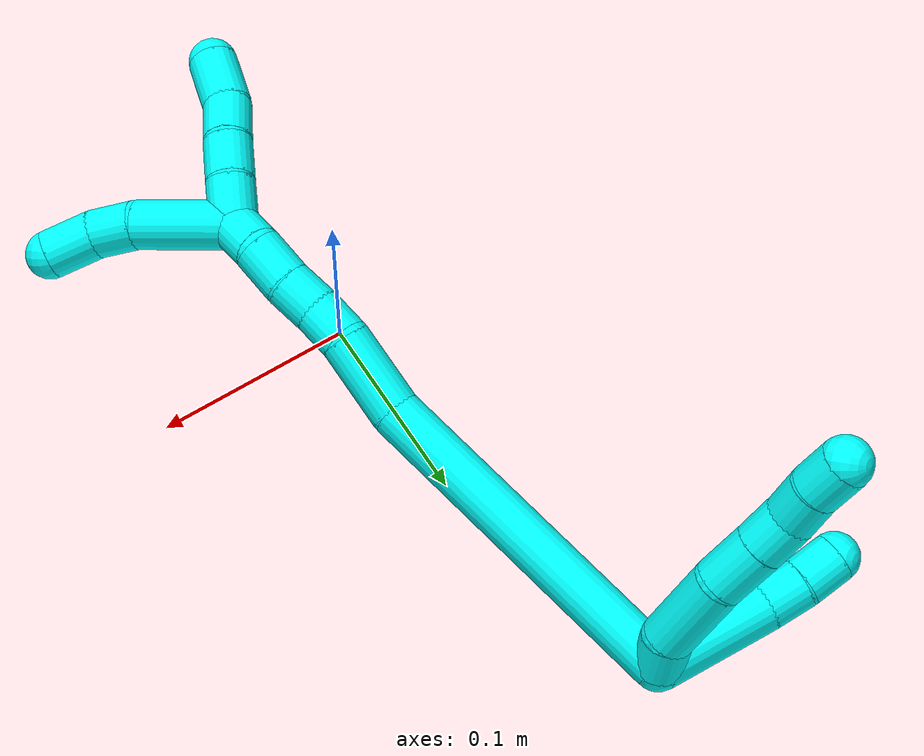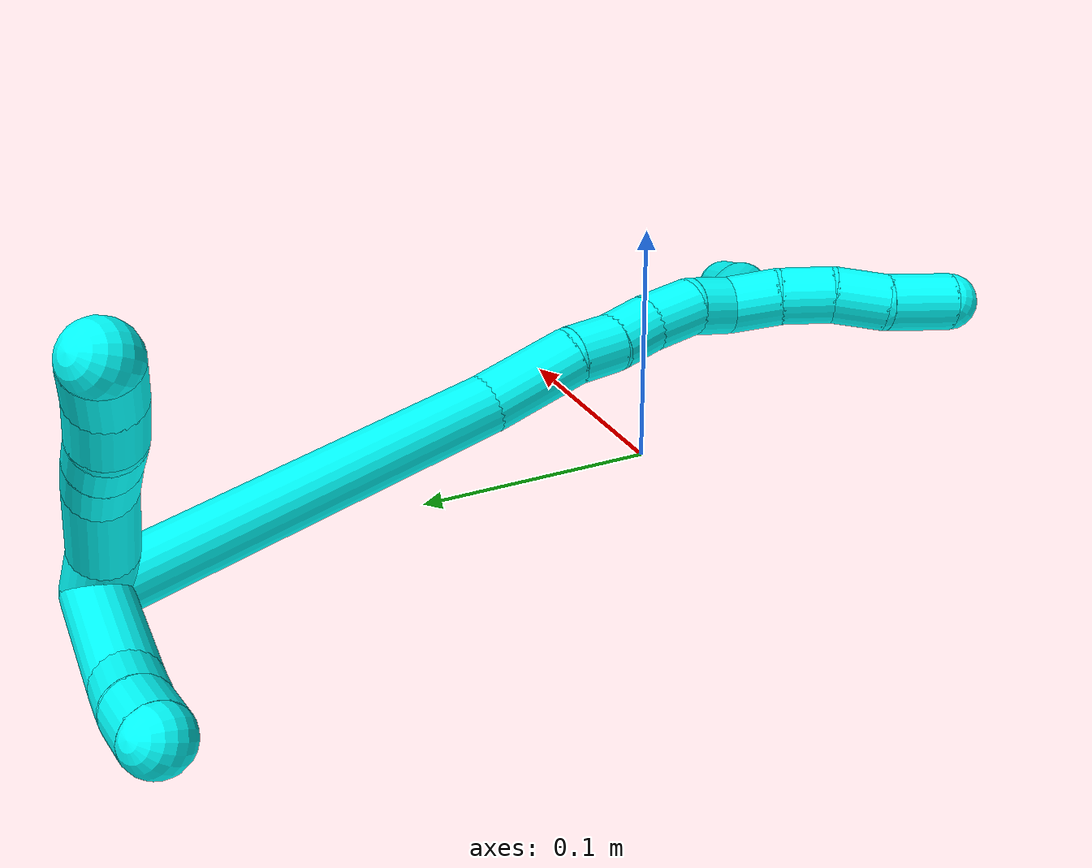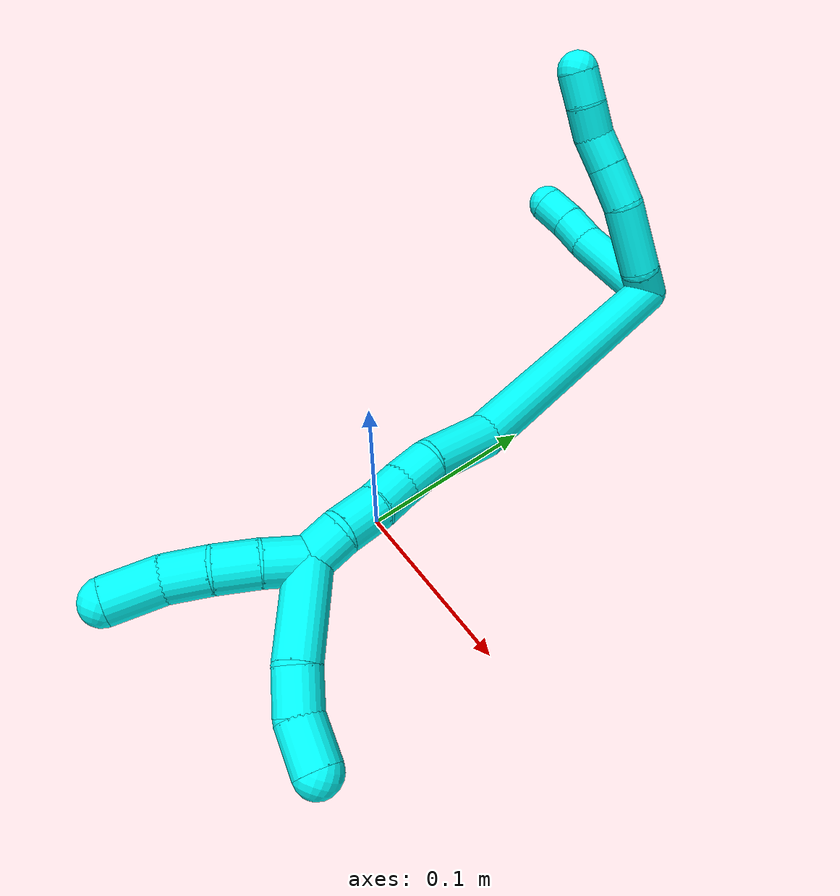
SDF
<sdf version="1.7">
 <world name="default">
  <model name="3">
   <static>0</static>
   <link name="3">
    <collision name="collision-cylinder-e_1_2_8">
     <pose>0.008439 -0.00298 0.004604 0.574475 0.994513 0.317955</pose>
     <geometry><cylinder><radius>0.0125</radius><length>0.02013</length></cylinder></geometry>
     <surface>
      <friction><ode><mu>1.16</mu><mu2>1.16</mu2><slip1>0</slip1><slip2>0</slip2></ode></friction>
      <contact><ode><kp>1e+06</kp><kd>1</kd><max_vel>0</max_vel><min_depth>0.001</min_depth></ode></contact>
     </surface>
    </collision>
    <visual name="visual-cylinder-e_1_2_8">
     <pose>0.008439 -0.00298 0.004604 0.574475 0.994513 0.317955</pose>
     <geometry><cylinder><radius>0.0125</radius><length>0.02013</length></cylinder></geometry>
     <material><ambient>0.003922 1 0.996078 1</ambient></material>
    </visual>
    <collision name="collision-cylinder-e_2_8_9">
     <pose>0.030154 -0.014828 0.023819 0.545464 0.660369 0.191141</pose>
     <geometry><cylinder><radius>0.0125</radius><length>0.043281</length></cylinder></geometry>
     <surface>
      <friction><ode><mu>1.16</mu><mu2>1.16</mu2><slip1>0</slip1><slip2>0</slip2></ode></friction>
      <contact><ode><kp>1e+06</kp><kd>1</kd><max_vel>0</max_vel><min_depth>0.001</min_depth></ode></contact>
     </surface>
    </collision>
    <visual name="visual-cylinder-e_2_8_9">
     <pose>0.030154 -0.014828 0.023819 0.545464 0.660369 0.191141</pose>
     <geometry><cylinder><radius>0.0125</radius><length>0.043281</length></cylinder></geometry>
     <material><ambient>0.003922 1 0.996078 1</ambient></material>
    </visual>
    <collision name="collision-cylinder-e_3_9_10">
     <pose>0.049297 -0.031307 0.047501 0.698181 0.460096 0.170081</pose>
     <geometry><cylinder><radius>0.0125</radius><length>0.026433</length></cylinder></geometry>
     <surface>
      <friction><ode><mu>1.16</mu><mu2>1.16</mu2><slip1>0</slip1><slip2>0</slip2></ode></friction>
      <contact><ode><kp>1e+06</kp><kd>1</kd><max_vel>0</max_vel><min_depth>0.001</min_depth></ode></contact>
     </surface>
    </collision>
    <visual name="visual-cylinder-e_3_9_10">
     <pose>0.049297 -0.031307 0.047501 0.698181 0.460096 0.170081</pose>
     <geometry><cylinder><radius>0.0125</radius><length>0.026433</length></cylinder></geometry>
     <material><ambient>0.003922 1 0.996078 1</ambient></material>
    </visual>
    <collision name="collision-cylinder-e_4_10_11">
     <pose>0.059744 -0.044882 0.063273 0.727156 0.471961 0.182479</pose>
     <geometry><cylinder><radius>0.0125</radius><length>0.02014</length></cylinder></geometry>
     <surface>
      <friction><ode><mu>1.16</mu><mu2>1.16</mu2><slip1>0</slip1><slip2>0</slip2></ode></friction>
      <contact><ode><kp>1e+06</kp><kd>1</kd><max_vel>0</max_vel><min_depth>0.001</min_depth></ode></contact>
     </surface>
    </collision>
    <visual name="visual-cylinder-e_4_10_11">
     <pose>0.059744 -0.044882 0.063273 0.727156 0.471961 0.182479</pose>
     <geometry><cylinder><radius>0.0125</radius><length>0.02014</length></cylinder></geometry>
     <material><ambient>0.003922 1 0.996078 1</ambient></material>
    </visual>
    <collision name="collision-cylinder-e_5_11_12">
     <pose>0.070761 -0.054659 0.076614 0.521506 0.69919 0.193944</pose>
     <geometry><cylinder><radius>0.0125</radius><length>0.020011</length></cylinder></geometry>
     <surface>
      <friction><ode><mu>1.16</mu><mu2>1.16</mu2><slip1>0</slip1><slip2>0</slip2></ode></friction>
      <contact><ode><kp>1e+06</kp><kd>1</kd><max_vel>0</max_vel><min_depth>0.001</min_depth></ode></contact>
     </surface>
    </collision>
    <visual name="visual-cylinder-e_5_11_12">
     <pose>0.070761 -0.054659 0.076614 0.521506 0.69919 0.193944</pose>
     <geometry><cylinder><radius>0.0125</radius><length>0.020011</length></cylinder></geometry>
     <material><ambient>0.003922 1 0.996078 1</ambient></material>
    </visual>
    <collision name="collision-cylinder-e_6_12_6">
     <pose>0.082512 -0.062786 0.090551 0.533668 0.559728 0.156805</pose>
     <geometry><cylinder><radius>0.0125</radius><length>0.020004</length></cylinder></geometry>
     <surface>
      <friction><ode><mu>1.16</mu><mu2>1.16</mu2><slip1>0</slip1><slip2>0</slip2></ode></friction>
      <contact><ode><kp>1e+06</kp><kd>1</kd><max_vel>0</max_vel><min_depth>0.001</min_depth></ode></contact>
     </surface>
    </collision>
    <visual name="visual-cylinder-e_6_12_6">
     <pose>0.082512 -0.062786 0.090551 0.533668 0.559728 0.156805</pose>
     <geometry><cylinder><radius>0.0125</radius><length>0.020004</length></cylinder></geometry>
     <material><ambient>0.003922 1 0.996078 1</ambient></material>
    </visual>
    <collision name="collision-cylinder-e_1_2_13">
     <pose>-0.006802 -0.02538 0.013487 1.08233 -0.232392 -0.140074</pose>
     <geometry><cylinder><radius>0.0125</radius><length>0.05907</length></cylinder></geometry>
     <surface>
      <friction><ode><mu>1.16</mu><mu2>1.16</mu2><slip1>0</slip1><slip2>0</slip2></ode></friction>
      <contact><ode><kp>1e+06</kp><kd>1</kd><max_vel>0</max_vel><min_depth>0.001</min_depth></ode></contact>
     </surface>
    </collision>
    <visual name="visual-cylinder-e_1_2_13">
     <pose>-0.006802 -0.02538 0.013487 1.08233 -0.232392 -0.140074</pose>
     <geometry><cylinder><radius>0.0125</radius><length>0.05907</length></cylinder></geometry>
     <material><ambient>0.003922 1 0.996078 1</ambient></material>
    </visual>
    <collision name="collision-cylinder-e_2_13_14">
     <pose>-0.014291 -0.059345 0.032608 0.990075 -0.066767 -0.036055</pose>
     <geometry><cylinder><radius>0.0125</radius><length>0.020583</length></cylinder></geometry>
     <surface>
      <friction><ode><mu>1.16</mu><mu2>1.16</mu2><slip1>0</slip1><slip2>0</slip2></ode></friction>
      <contact><ode><kp>1e+06</kp><kd>1</kd><max_vel>0</max_vel><min_depth>0.001</min_depth></ode></contact>
     </surface>
    </collision>
    <visual name="visual-cylinder-e_2_13_14">
     <pose>-0.014291 -0.059345 0.032608 0.990075 -0.066767 -0.036055</pose>
     <geometry><cylinder><radius>0.0125</radius><length>0.020583</length></cylinder></geometry>
     <material><ambient>0.003922 1 0.996078 1</ambient></material>
    </visual>
    <collision name="collision-cylinder-e_3_14_5">
     <pose>-0.015468 -0.076991 0.042843 1.10094 -0.048291 -0.029642</pose>
     <geometry><cylinder><radius>0.0125</radius><length>0.020347</length></cylinder></geometry>
     <surface>
      <friction><ode><mu>1.16</mu><mu2>1.16</mu2><slip1>0</slip1><slip2>0</slip2></ode></friction>
      <contact><ode><kp>1e+06</kp><kd>1</kd><max_vel>0</max_vel><min_depth>0.001</min_depth></ode></contact>
     </surface>
    </collision>
    <visual name="visual-cylinder-e_3_14_5">
     <pose>-0.015468 -0.076991 0.042843 1.10094 -0.048291 -0.029642</pose>
     <geometry><cylinder><radius>0.0125</radius><length>0.020347</length></cylinder></geometry>
     <material><ambient>0.003922 1 0.996078 1</ambient></material>
    </visual>
    <collision name="collision-cylinder-e_1_2_15">
     <pose>0.051823 -0.022299 -0.065216 2.81213 0.644714 2.21796</pose>
     <geometry><cylinder><radius>0.0125</radius><length>0.172465</length></cylinder></geometry>
     <surface>
      <friction><ode><mu>1.16</mu><mu2>1.16</mu2><slip1>0</slip1><slip2>0</slip2></ode></friction>
      <contact><ode><kp>1e+06</kp><kd>1</kd><max_vel>0</max_vel><min_depth>0.001</min_depth></ode></contact>
     </surface>
    </collision>
    <visual name="visual-cylinder-e_1_2_15">
     <pose>0.051823 -0.022299 -0.065216 2.81213 0.644714 2.21796</pose>
     <geometry><cylinder><radius>0.0125</radius><length>0.172465</length></cylinder></geometry>
     <material><ambient>0.003922 1 0.996078 1</ambient></material>
    </visual>
    <collision name="collision-cylinder-e_2_15_16">
     <pose>0.118673 -0.052518 -0.142999 2.57925 0.791161 1.93142</pose>
     <geometry><cylinder><radius>0.0125</radius><length>0.042258</length></cylinder></geometry>
     <surface>
      <friction><ode><mu>1.16</mu><mu2>1.16</mu2><slip1>0</slip1><slip2>0</slip2></ode></friction>
      <contact><ode><kp>1e+06</kp><kd>1</kd><max_vel>0</max_vel><min_depth>0.001</min_depth></ode></contact>
     </surface>
    </collision>
    <visual name="visual-cylinder-e_2_15_16">
     <pose>0.118673 -0.052518 -0.142999 2.57925 0.791161 1.93142</pose>
     <geometry><cylinder><radius>0.0125</radius><length>0.042258</length></cylinder></geometry>
     <material><ambient>0.003922 1 0.996078 1</ambient></material>
    </visual>
    <collision name="collision-cylinder-e_3_16_17">
     <pose>0.1392 -0.063985 -0.16373 2.73178 0.553585 1.87841</pose>
     <geometry><cylinder><radius>0.0125</radius><length>0.020927</length></cylinder></geometry>
     <surface>
      <friction><ode><mu>1.16</mu><mu2>1.16</mu2><slip1>0</slip1><slip2>0</slip2></ode></friction>
      <contact><ode><kp>1e+06</kp><kd>1</kd><max_vel>0</max_vel><min_depth>0.001</min_depth></ode></contact>
     </surface>
    </collision>
    <visual name="visual-cylinder-e_3_16_17">
     <pose>0.1392 -0.063985 -0.16373 2.73178 0.553585 1.87841</pose>
     <geometry><cylinder><radius>0.0125</radius><length>0.020927</length></cylinder></geometry>
     <material><ambient>0.003922 1 0.996078 1</ambient></material>
    </visual>
    <collision name="collision-cylinder-e_4_17_18">
     <pose>0.151022 -0.069761 -0.179422 2.85357 0.677747 2.36095</pose>
     <geometry><cylinder><radius>0.0125</radius><length>0.020159</length></cylinder></geometry>
     <surface>
      <friction><ode><mu>1.16</mu><mu2>1.16</mu2><slip1>0</slip1><slip2>0</slip2></ode></friction>
      <contact><ode><kp>1e+06</kp><kd>1</kd><max_vel>0</max_vel><min_depth>0.001</min_depth></ode></contact>
     </surface>
    </collision>
    <visual name="visual-cylinder-e_4_17_18">
     <pose>0.151022 -0.069761 -0.179422 2.85357 0.677747 2.36095</pose>
     <geometry><cylinder><radius>0.0125</radius><length>0.020159</length></cylinder></geometry>
     <material><ambient>0.003922 1 0.996078 1</ambient></material>
    </visual>
    <collision name="collision-cylinder-e_5_18_19">
     <pose>0.164295 -0.076087 -0.195572 2.69819 0.629584 1.9306</pose>
     <geometry><cylinder><radius>0.0125</radius><length>0.023617</length></cylinder></geometry>
     <surface>
      <friction><ode><mu>1.16</mu><mu2>1.16</mu2><slip1>0</slip1><slip2>0</slip2></ode></friction>
      <contact><ode><kp>1e+06</kp><kd>1</kd><max_vel>0</max_vel><min_depth>0.001</min_depth></ode></contact>
     </surface>
    </collision>
    <visual name="visual-cylinder-e_5_18_19">
     <pose>0.164295 -0.076087 -0.195572 2.69819 0.629584 1.9306</pose>
     <geometry><cylinder><radius>0.0125</radius><length>0.023617</length></cylinder></geometry>
     <material><ambient>0.003922 1 0.996078 1</ambient></material>
    </visual>
    <collision name="collision-cylinder-e_6_19_1">
     <pose>0.174531 -0.084178 -0.213085 2.71913 0.32489 1.30519</pose>
     <geometry><cylinder><radius>0.0125</radius><length>0.020573</length></cylinder></geometry>
     <surface>
      <friction><ode><mu>1.16</mu><mu2>1.16</mu2><slip1>0</slip1><slip2>0</slip2></ode></friction>
      <contact><ode><kp>1e+06</kp><kd>1</kd><max_vel>0</max_vel><min_depth>0.001</min_depth></ode></contact>
     </surface>
    </collision>
    <visual name="visual-cylinder-e_6_19_1">
     <pose>0.174531 -0.084178 -0.213085 2.71913 0.32489 1.30519</pose>
     <geometry><cylinder><radius>0.0125</radius><length>0.020573</length></cylinder></geometry>
     <material><ambient>0.003922 1 0.996078 1</ambient></material>
    </visual>
    <collision name="collision-cylinder-e_1_1_20">
     <pose>0.184408 -0.079522 -0.245103 -2.78354 0.260931 -1.2547</pose>
     <geometry><cylinder><radius>0.0125</radius><length>0.051115</length></cylinder></geometry>
     <surface>
      <friction><ode><mu>1.16</mu><mu2>1.16</mu2><slip1>0</slip1><slip2>0</slip2></ode></friction>
      <contact><ode><kp>1e+06</kp><kd>1</kd><max_vel>0</max_vel><min_depth>0.001</min_depth></ode></contact>
     </surface>
    </collision>
    <visual name="visual-cylinder-e_1_1_20">
     <pose>0.184408 -0.079522 -0.245103 -2.78354 0.260931 -1.2547</pose>
     <geometry><cylinder><radius>0.0125</radius><length>0.051115</length></cylinder></geometry>
     <material><ambient>0.003922 1 0.996078 1</ambient></material>
    </visual>
    <collision name="collision-cylinder-e_2_20_21">
     <pose>0.191645 -0.065919 -0.278713 -2.70051 0.055425 -0.246036</pose>
     <geometry><cylinder><radius>0.0125</radius><length>0.023223</length></cylinder></geometry>
     <surface>
      <friction><ode><mu>1.16</mu><mu2>1.16</mu2><slip1>0</slip1><slip2>0</slip2></ode></friction>
      <contact><ode><kp>1e+06</kp><kd>1</kd><max_vel>0</max_vel><min_depth>0.001</min_depth></ode></contact>
     </surface>
    </collision>
    <visual name="visual-cylinder-e_2_20_21">
     <pose>0.191645 -0.065919 -0.278713 -2.70051 0.055425 -0.246036</pose>
     <geometry><cylinder><radius>0.0125</radius><length>0.023223</length></cylinder></geometry>
     <material><ambient>0.003922 1 0.996078 1</ambient></material>
    </visual>
    <collision name="collision-cylinder-e_3_21_4">
     <pose>0.193013 -0.052058 -0.298401 -2.37239 0.056503 -0.139408</pose>
     <geometry><cylinder><radius>0.0125</radius><length>0.025663</length></cylinder></geometry>
     <surface>
      <friction><ode><mu>1.16</mu><mu2>1.16</mu2><slip1>0</slip1><slip2>0</slip2></ode></friction>
      <contact><ode><kp>1e+06</kp><kd>1</kd><max_vel>0</max_vel><min_depth>0.001</min_depth></ode></contact>
     </surface>
    </collision>
    <visual name="visual-cylinder-e_3_21_4">
     <pose>0.193013 -0.052058 -0.298401 -2.37239 0.056503 -0.139408</pose>
     <geometry><cylinder><radius>0.0125</radius><length>0.025663</length></cylinder></geometry>
     <material><ambient>0.003922 1 0.996078 1</ambient></material>
    </visual>
    <collision name="collision-cylinder-e_1_1_22">
     <pose>0.183447 -0.097516 -0.226365 2.01007 0.49953 0.76397</pose>
     <geometry><cylinder><radius>0.0125</radius><length>0.023514</length></cylinder></geometry>
     <surface>
      <friction><ode><mu>1.16</mu><mu2>1.16</mu2><slip1>0</slip1><slip2>0</slip2></ode></friction>
      <contact><ode><kp>1e+06</kp><kd>1</kd><max_vel>0</max_vel><min_depth>0.001</min_depth></ode></contact>
     </surface>
    </collision>
    <visual name="visual-cylinder-e_1_1_22">
     <pose>0.183447 -0.097516 -0.226365 2.01007 0.49953 0.76397</pose>
     <geometry><cylinder><radius>0.0125</radius><length>0.023514</length></cylinder></geometry>
     <material><ambient>0.003922 1 0.996078 1</ambient></material>
    </visual>
    <collision name="collision-cylinder-e_2_22_23">
     <pose>0.193182 -0.116228 -0.235864 2.06991 0.367038 0.605919</pose>
     <geometry><cylinder><radius>0.0125</radius><length>0.022872</length></cylinder></geometry>
     <surface>
      <friction><ode><mu>1.16</mu><mu2>1.16</mu2><slip1>0</slip1><slip2>0</slip2></ode></friction>
      <contact><ode><kp>1e+06</kp><kd>1</kd><max_vel>0</max_vel><min_depth>0.001</min_depth></ode></contact>
     </surface>
    </collision>
    <visual name="visual-cylinder-e_2_22_23">
     <pose>0.193182 -0.116228 -0.235864 2.06991 0.367038 0.605919</pose>
     <geometry><cylinder><radius>0.0125</radius><length>0.022872</length></cylinder></geometry>
     <material><ambient>0.003922 1 0.996078 1</ambient></material>
    </visual>
    <collision name="collision-cylinder-e_3_23_24">
     <pose>0.199572 -0.135684 -0.246963 2.10681 0.192503 0.336106</pose>
     <geometry><cylinder><radius>0.0125</radius><length>0.023899</length></cylinder></geometry>
     <surface>
      <friction><ode><mu>1.16</mu><mu2>1.16</mu2><slip1>0</slip1><slip2>0</slip2></ode></friction>
      <contact><ode><kp>1e+06</kp><kd>1</kd><max_vel>0</max_vel><min_depth>0.001</min_depth></ode></contact>
     </surface>
    </collision>
    <visual name="visual-cylinder-e_3_23_24">
     <pose>0.199572 -0.135684 -0.246963 2.10681 0.192503 0.336106</pose>
     <geometry><cylinder><radius>0.0125</radius><length>0.023899</length></cylinder></geometry>
     <material><ambient>0.003922 1 0.996078 1</ambient></material>
    </visual>
    <collision name="collision-cylinder-e_4_24_3">
     <pose>0.206987 -0.156049 -0.262374 2.31255 0.352435 0.769059</pose>
     <geometry><cylinder><radius>0.0125</radius><length>0.029715</length></cylinder></geometry>
     <surface>
      <friction><ode><mu>1.16</mu><mu2>1.16</mu2><slip1>0</slip1><slip2>0</slip2></ode></friction>
      <contact><ode><kp>1e+06</kp><kd>1</kd><max_vel>0</max_vel><min_depth>0.001</min_depth></ode></contact>
     </surface>
    </collision>
    <visual name="visual-cylinder-e_4_24_3">
     <pose>0.206987 -0.156049 -0.262374 2.31255 0.352435 0.769059</pose>
     <geometry><cylinder><radius>0.0125</radius><length>0.029715</length></cylinder></geometry>
     <material><ambient>0.003922 1 0.996078 1</ambient></material>
    </visual>
    <collision name="collision-sphere-3">
     <pose>0.212116 -0.16633 -0.271794 0 -0 0</pose>
     <geometry><sphere><radius>0.0125</radius></sphere></geometry>
     <surface>
      <friction><ode><mu>1.16</mu><mu2>1.16</mu2><slip1>0</slip1><slip2>0</slip2></ode></friction>
      <contact><ode><kp>1e+06</kp><kd>1</kd><max_vel>0</max_vel><min_depth>0.001</min_depth></ode></contact>
     </surface>
    </collision>
    <visual name="visual-sphere-3">
     <pose>0.212116 -0.16633 -0.271794 0 -0 0</pose>
     <geometry><sphere><radius>0.0125</radius></sphere></geometry>
     <material><ambient>0.003922 1 0.996078 1</ambient></material>
    </visual>
    <collision name="collision-sphere-24">
     <pose>0.201858 -0.145768 -0.252953 0 -0 0</pose>
     <geometry><sphere><radius>0.0125</radius></sphere></geometry>
     <surface>
      <friction><ode><mu>1.16</mu><mu2>1.16</mu2><slip1>0</slip1><slip2>0</slip2></ode></friction>
      <contact><ode><kp>1e+06</kp><kd>1</kd><max_vel>0</max_vel><min_depth>0.001</min_depth></ode></contact>
     </surface>
    </collision>
    <visual name="visual-sphere-24">
     <pose>0.201858 -0.145768 -0.252953 0 -0 0</pose>
     <geometry><sphere><radius>0.0125</radius></sphere></geometry>
     <material><ambient>0.003922 1 0.996078 1</ambient></material>
    </visual>
    <collision name="collision-sphere-23">
     <pose>0.197286 -0.1256 -0.240973 0 -0 0</pose>
     <geometry><sphere><radius>0.0125</radius></sphere></geometry>
     <surface>
      <friction><ode><mu>1.16</mu><mu2>1.16</mu2><slip1>0</slip1><slip2>0</slip2></ode></friction>
      <contact><ode><kp>1e+06</kp><kd>1</kd><max_vel>0</max_vel><min_depth>0.001</min_depth></ode></contact>
     </surface>
    </collision>
    <visual name="visual-sphere-23">
     <pose>0.197286 -0.1256 -0.240973 0 -0 0</pose>
     <geometry><sphere><radius>0.0125</radius></sphere></geometry>
     <material><ambient>0.003922 1 0.996078 1</ambient></material>
    </visual>
    <collision name="collision-sphere-22">
     <pose>0.189078 -0.106856 -0.230754 0 -0 0</pose>
     <geometry><sphere><radius>0.0125</radius></sphere></geometry>
     <surface>
      <friction><ode><mu>1.16</mu><mu2>1.16</mu2><slip1>0</slip1><slip2>0</slip2></ode></friction>
      <contact><ode><kp>1e+06</kp><kd>1</kd><max_vel>0</max_vel><min_depth>0.001</min_depth></ode></contact>
     </surface>
    </collision>
    <visual name="visual-sphere-22">
     <pose>0.189078 -0.106856 -0.230754 0 -0 0</pose>
     <geometry><sphere><radius>0.0125</radius></sphere></geometry>
     <material><ambient>0.003922 1 0.996078 1</ambient></material>
    </visual>
    <collision name="collision-sphere-4">
     <pose>0.193737 -0.043148 -0.307605 0 -0 0</pose>
     <geometry><sphere><radius>0.0125</radius></sphere></geometry>
     <surface>
      <friction><ode><mu>1.16</mu><mu2>1.16</mu2><slip1>0</slip1><slip2>0</slip2></ode></friction>
      <contact><ode><kp>1e+06</kp><kd>1</kd><max_vel>0</max_vel><min_depth>0.001</min_depth></ode></contact>
     </surface>
    </collision>
    <visual name="visual-sphere-4">
     <pose>0.193737 -0.043148 -0.307605 0 -0 0</pose>
     <geometry><sphere><radius>0.0125</radius></sphere></geometry>
     <material><ambient>0.003922 1 0.996078 1</ambient></material>
    </visual>
    <collision name="collision-sphere-21">
     <pose>0.192288 -0.060969 -0.289197 0 -0 0</pose>
     <geometry><sphere><radius>0.0125</radius></sphere></geometry>
     <surface>
      <friction><ode><mu>1.16</mu><mu2>1.16</mu2><slip1>0</slip1><slip2>0</slip2></ode></friction>
      <contact><ode><kp>1e+06</kp><kd>1</kd><max_vel>0</max_vel><min_depth>0.001</min_depth></ode></contact>
     </surface>
    </collision>
    <visual name="visual-sphere-21">
     <pose>0.192288 -0.060969 -0.289197 0 -0 0</pose>
     <geometry><sphere><radius>0.0125</radius></sphere></geometry>
     <material><ambient>0.003922 1 0.996078 1</ambient></material>
    </visual>
    <collision name="collision-sphere-20">
     <pose>0.191002 -0.070868 -0.268229 0 -0 0</pose>
     <geometry><sphere><radius>0.0125</radius></sphere></geometry>
     <surface>
      <friction><ode><mu>1.16</mu><mu2>1.16</mu2><slip1>0</slip1><slip2>0</slip2></ode></friction>
      <contact><ode><kp>1e+06</kp><kd>1</kd><max_vel>0</max_vel><min_depth>0.001</min_depth></ode></contact>
     </surface>
    </collision>
    <visual name="visual-sphere-20">
     <pose>0.191002 -0.070868 -0.268229 0 -0 0</pose>
     <geometry><sphere><radius>0.0125</radius></sphere></geometry>
     <material><ambient>0.003922 1 0.996078 1</ambient></material>
    </visual>
    <collision name="collision-sphere-12">
     <pose>0.077201 -0.058474 0.083254 0 -0 0</pose>
     <geometry><sphere><radius>0.0125</radius></sphere></geometry>
     <surface>
      <friction><ode><mu>1.16</mu><mu2>1.16</mu2><slip1>0</slip1><slip2>0</slip2></ode></friction>
      <contact><ode><kp>1e+06</kp><kd>1</kd><max_vel>0</max_vel><min_depth>0.001</min_depth></ode></contact>
     </surface>
    </collision>
    <visual name="visual-sphere-12">
     <pose>0.077201 -0.058474 0.083254 0 -0 0</pose>
     <geometry><sphere><radius>0.0125</radius></sphere></geometry>
     <material><ambient>0.003922 1 0.996078 1</ambient></material>
    </visual>
    <collision name="collision-sphere-11">
     <pose>0.064322 -0.050844 0.069974 0 -0 0</pose>
     <geometry><sphere><radius>0.0125</radius></sphere></geometry>
     <surface>
      <friction><ode><mu>1.16</mu><mu2>1.16</mu2><slip1>0</slip1><slip2>0</slip2></ode></friction>
      <contact><ode><kp>1e+06</kp><kd>1</kd><max_vel>0</max_vel><min_depth>0.001</min_depth></ode></contact>
     </surface>
    </collision>
    <visual name="visual-sphere-11">
     <pose>0.064322 -0.050844 0.069974 0 -0 0</pose>
     <geometry><sphere><radius>0.0125</radius></sphere></geometry>
     <material><ambient>0.003922 1 0.996078 1</ambient></material>
    </visual>
    <collision name="collision-sphere-10">
     <pose>0.055165 -0.03892 0.056573 0 -0 0</pose>
     <geometry><sphere><radius>0.0125</radius></sphere></geometry>
     <surface>
      <friction><ode><mu>1.16</mu><mu2>1.16</mu2><slip1>0</slip1><slip2>0</slip2></ode></friction>
      <contact><ode><kp>1e+06</kp><kd>1</kd><max_vel>0</max_vel><min_depth>0.001</min_depth></ode></contact>
     </surface>
    </collision>
    <visual name="visual-sphere-10">
     <pose>0.055165 -0.03892 0.056573 0 -0 0</pose>
     <geometry><sphere><radius>0.0125</radius></sphere></geometry>
     <material><ambient>0.003922 1 0.996078 1</ambient></material>
    </visual>
    <collision name="collision-sphere-9">
     <pose>0.043428 -0.023695 0.03843 0 -0 0</pose>
     <geometry><sphere><radius>0.0125</radius></sphere></geometry>
     <surface>
      <friction><ode><mu>1.16</mu><mu2>1.16</mu2><slip1>0</slip1><slip2>0</slip2></ode></friction>
      <contact><ode><kp>1e+06</kp><kd>1</kd><max_vel>0</max_vel><min_depth>0.001</min_depth></ode></contact>
     </surface>
    </collision>
    <visual name="visual-sphere-9">
     <pose>0.043428 -0.023695 0.03843 0 -0 0</pose>
     <geometry><sphere><radius>0.0125</radius></sphere></geometry>
     <material><ambient>0.003922 1 0.996078 1</ambient></material>
    </visual>
    <collision name="collision-sphere-2">
     <geometry><sphere><radius>0.0125</radius></sphere></geometry>
     <surface>
      <friction><ode><mu>1.16</mu><mu2>1.16</mu2><slip1>0</slip1><slip2>0</slip2></ode></friction>
      <contact><ode><kp>1e+06</kp><kd>1</kd><max_vel>0</max_vel><min_depth>0.001</min_depth></ode></contact>
     </surface>
    </collision>
    <visual name="visual-sphere-2">
     <geometry><sphere><radius>0.0125</radius></sphere></geometry>
     <material><ambient>0.003922 1 0.996078 1</ambient></material>
    </visual>
    <collision name="collision-sphere-19">
     <pose>0.171248 -0.080181 -0.204193 0 -0 0</pose>
     <geometry><sphere><radius>0.0125</radius></sphere></geometry>
     <surface>
      <friction><ode><mu>1.16</mu><mu2>1.16</mu2><slip1>0</slip1><slip2>0</slip2></ode></friction>
      <contact><ode><kp>1e+06</kp><kd>1</kd><max_vel>0</max_vel><min_depth>0.001</min_depth></ode></contact>
     </surface>
    </collision>
    <visual name="visual-sphere-19">
     <pose>0.171248 -0.080181 -0.204193 0 -0 0</pose>
     <geometry><sphere><radius>0.0125</radius></sphere></geometry>
     <material><ambient>0.003922 1 0.996078 1</ambient></material>
    </visual>
    <collision name="collision-sphere-8">
     <pose>0.016879 -0.005961 0.009208 0 -0 0</pose>
     <geometry><sphere><radius>0.0125</radius></sphere></geometry>
     <surface>
      <friction><ode><mu>1.16</mu><mu2>1.16</mu2><slip1>0</slip1><slip2>0</slip2></ode></friction>
      <contact><ode><kp>1e+06</kp><kd>1</kd><max_vel>0</max_vel><min_depth>0.001</min_depth></ode></contact>
     </surface>
    </collision>
    <visual name="visual-sphere-8">
     <pose>0.016879 -0.005961 0.009208 0 -0 0</pose>
     <geometry><sphere><radius>0.0125</radius></sphere></geometry>
     <material><ambient>0.003922 1 0.996078 1</ambient></material>
    </visual>
    <collision name="collision-sphere-6">
     <pose>0.087822 -0.067097 0.097848 0 -0 0</pose>
     <geometry><sphere><radius>0.0125</radius></sphere></geometry>
     <surface>
      <friction><ode><mu>1.16</mu><mu2>1.16</mu2><slip1>0</slip1><slip2>0</slip2></ode></friction>
      <contact><ode><kp>1e+06</kp><kd>1</kd><max_vel>0</max_vel><min_depth>0.001</min_depth></ode></contact>
     </surface>
    </collision>
    <visual name="visual-sphere-6">
     <pose>0.087822 -0.067097 0.097848 0 -0 0</pose>
     <geometry><sphere><radius>0.0125</radius></sphere></geometry>
     <material><ambient>0.003922 1 0.996078 1</ambient></material>
    </visual>
    <collision name="collision-sphere-13">
     <pose>-0.013604 -0.05076 0.026975 0 -0 0</pose>
     <geometry><sphere><radius>0.0125</radius></sphere></geometry>
     <surface>
      <friction><ode><mu>1.16</mu><mu2>1.16</mu2><slip1>0</slip1><slip2>0</slip2></ode></friction>
      <contact><ode><kp>1e+06</kp><kd>1</kd><max_vel>0</max_vel><min_depth>0.001</min_depth></ode></contact>
     </surface>
    </collision>
    <visual name="visual-sphere-13">
     <pose>-0.013604 -0.05076 0.026975 0 -0 0</pose>
     <geometry><sphere><radius>0.0125</radius></sphere></geometry>
     <material><ambient>0.003922 1 0.996078 1</ambient></material>
    </visual>
    <collision name="collision-sphere-14">
     <pose>-0.014977 -0.06793 0.038242 0 -0 0</pose>
     <geometry><sphere><radius>0.0125</radius></sphere></geometry>
     <surface>
      <friction><ode><mu>1.16</mu><mu2>1.16</mu2><slip1>0</slip1><slip2>0</slip2></ode></friction>
      <contact><ode><kp>1e+06</kp><kd>1</kd><max_vel>0</max_vel><min_depth>0.001</min_depth></ode></contact>
     </surface>
    </collision>
    <visual name="visual-sphere-14">
     <pose>-0.014977 -0.06793 0.038242 0 -0 0</pose>
     <geometry><sphere><radius>0.0125</radius></sphere></geometry>
     <material><ambient>0.003922 1 0.996078 1</ambient></material>
    </visual>
    <collision name="collision-sphere-5">
     <pose>-0.01596 -0.086051 0.047443 0 -0 0</pose>
     <geometry><sphere><radius>0.0125</radius></sphere></geometry>
     <surface>
      <friction><ode><mu>1.16</mu><mu2>1.16</mu2><slip1>0</slip1><slip2>0</slip2></ode></friction>
      <contact><ode><kp>1e+06</kp><kd>1</kd><max_vel>0</max_vel><min_depth>0.001</min_depth></ode></contact>
     </surface>
    </collision>
    <visual name="visual-sphere-5">
     <pose>-0.01596 -0.086051 0.047443 0 -0 0</pose>
     <geometry><sphere><radius>0.0125</radius></sphere></geometry>
     <material><ambient>0.003922 1 0.996078 1</ambient></material>
    </visual>
    <collision name="collision-sphere-15">
     <pose>0.103646 -0.044599 -0.130432 0 -0 0</pose>
     <geometry><sphere><radius>0.0125</radius></sphere></geometry>
     <surface>
      <friction><ode><mu>1.16</mu><mu2>1.16</mu2><slip1>0</slip1><slip2>0</slip2></ode></friction>
      <contact><ode><kp>1e+06</kp><kd>1</kd><max_vel>0</max_vel><min_depth>0.001</min_depth></ode></contact>
     </surface>
    </collision>
    <visual name="visual-sphere-15">
     <pose>0.103646 -0.044599 -0.130432 0 -0 0</pose>
     <geometry><sphere><radius>0.0125</radius></sphere></geometry>
     <material><ambient>0.003922 1 0.996078 1</ambient></material>
    </visual>
    <collision name="collision-sphere-16">
     <pose>0.133699 -0.060438 -0.155566 0 -0 0</pose>
     <geometry><sphere><radius>0.0125</radius></sphere></geometry>
     <surface>
      <friction><ode><mu>1.16</mu><mu2>1.16</mu2><slip1>0</slip1><slip2>0</slip2></ode></friction>
      <contact><ode><kp>1e+06</kp><kd>1</kd><max_vel>0</max_vel><min_depth>0.001</min_depth></ode></contact>
     </surface>
    </collision>
    <visual name="visual-sphere-16">
     <pose>0.133699 -0.060438 -0.155566 0 -0 0</pose>
     <geometry><sphere><radius>0.0125</radius></sphere></geometry>
     <material><ambient>0.003922 1 0.996078 1</ambient></material>
    </visual>
    <collision name="collision-sphere-17">
     <pose>0.144702 -0.067531 -0.171894 0 -0 0</pose>
     <geometry><sphere><radius>0.0125</radius></sphere></geometry>
     <surface>
      <friction><ode><mu>1.16</mu><mu2>1.16</mu2><slip1>0</slip1><slip2>0</slip2></ode></friction>
      <contact><ode><kp>1e+06</kp><kd>1</kd><max_vel>0</max_vel><min_depth>0.001</min_depth></ode></contact>
     </surface>
    </collision>
    <visual name="visual-sphere-17">
     <pose>0.144702 -0.067531 -0.171894 0 -0 0</pose>
     <geometry><sphere><radius>0.0125</radius></sphere></geometry>
     <material><ambient>0.003922 1 0.996078 1</ambient></material>
    </visual>
    <collision name="collision-sphere-18">
     <pose>0.157342 -0.071992 -0.186951 0 -0 0</pose>
     <geometry><sphere><radius>0.0125</radius></sphere></geometry>
     <surface>
      <friction><ode><mu>1.16</mu><mu2>1.16</mu2><slip1>0</slip1><slip2>0</slip2></ode></friction>
      <contact><ode><kp>1e+06</kp><kd>1</kd><max_vel>0</max_vel><min_depth>0.001</min_depth></ode></contact>
     </surface>
    </collision>
    <visual name="visual-sphere-18">
     <pose>0.157342 -0.071992 -0.186951 0 -0 0</pose>
     <geometry><sphere><radius>0.0125</radius></sphere></geometry>
     <material><ambient>0.003922 1 0.996078 1</ambient></material>
    </visual>
    <collision name="collision-sphere-1">
     <pose>0.177815 -0.088175 -0.221976 0 -0 0</pose>
     <geometry><sphere><radius>0.0125</radius></sphere></geometry>
     <surface>
      <friction><ode><mu>1.16</mu><mu2>1.16</mu2><slip1>0</slip1><slip2>0</slip2></ode></friction>
      <contact><ode><kp>1e+06</kp><kd>1</kd><max_vel>0</max_vel><min_depth>0.001</min_depth></ode></contact>
     </surface>
    </collision>
    <visual name="visual-sphere-1">
     <pose>0.177815 -0.088175 -0.221976 0 -0 0</pose>
     <geometry><sphere><radius>0.0125</radius></sphere></geometry>
     <material><ambient>0.003922 1 0.996078 1</ambient></material>
    </visual>
    <inertial>
     <pose>0.095867 -0.054896 -0.100098 0 -0 0</pose>
     <mass>0.75</mass>
     <inertia>
      <ixx>0.00014</ixx>
      <ixy>0</ixy>
      <ixz>0</ixz>
      <iyy>0.000598</iyy>
      <iyz>0</iyz>
      <izz>-0.000154</izz>
     </inertia>
    </inertial>
   </link>
   <pose>-0.030357 0.234672 0.013355 0.113959 -1.03905 -1.16939</pose>
  </model>
 </world>
</sdf>
